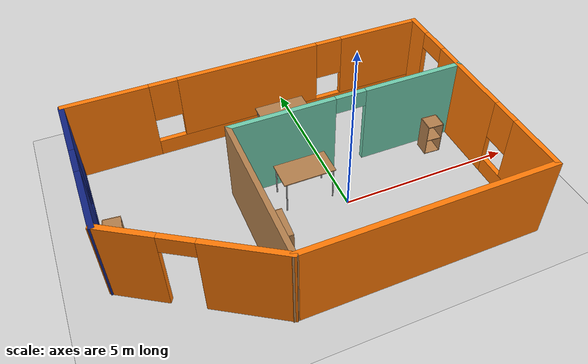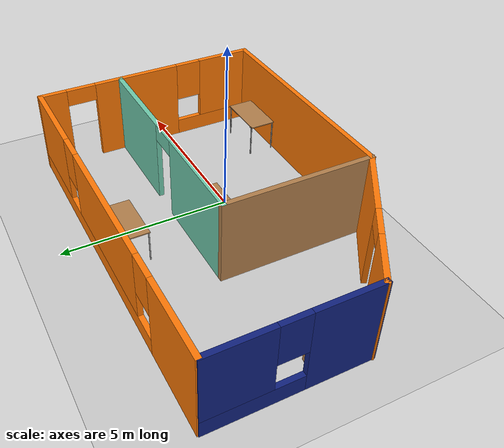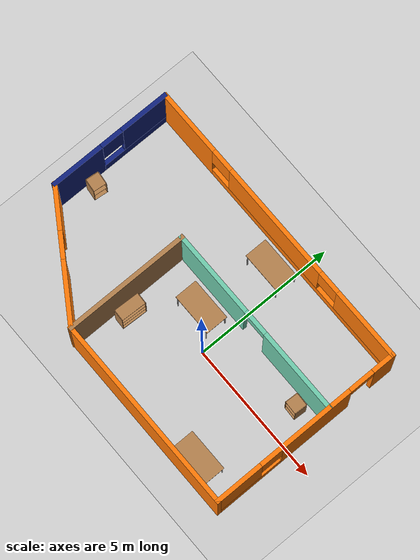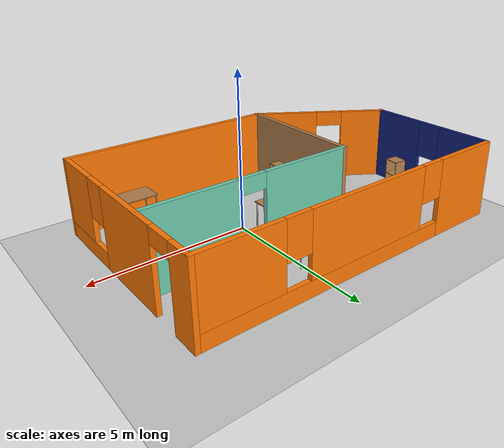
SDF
<sdf version="1.6">
 <world name="default">
  <model name="ground_plane">
   <static>1</static>
   <link name="link">
    <collision name="collision">
     <geometry><plane><normal>0 0 1</normal><size>100 100</size></plane></geometry>
     <surface><friction><ode><mu>100</mu><mu2>50</mu2></ode></friction></surface>
    </collision>
    <visual name="visual">
     <cast_shadows>0</cast_shadows>
     <geometry><plane><normal>0 0 1</normal><size>100 100</size></plane></geometry>
     <material>
      <script><uri>file://media/materials/scripts/gazebo.material</uri><name>Gazebo/Grey</name></script>
     </material>
    </visual>
   </link>
  </model>
  <light name="sun" type="directional">
   <pose>0 0 10 0 -0 0</pose>
   <diffuse>0.8 0.8 0.8 1</diffuse>
   <specular>0.2 0.2 0.2 1</specular>
   <attenuation>
    <range>1000</range>
    <constant>0.9</constant>
    <linear>0.01</linear>
    <quadratic>0.001</quadratic>
   </attenuation>
   <direction>-0.5 0.1 -0.9</direction>
  </light>
  <gravity>0 0 -9.8</gravity>
  <magnetic_field>6e-06 2.3e-05 -4.2e-05</magnetic_field>
  <atmosphere type="adiabatic"/>
  <physics name="default_physics" default="0" type="ode">
   <max_step_size>0.001</max_step_size>
   <real_time_factor>1</real_time_factor>
   <real_time_update_rate>1000</real_time_update_rate>
  </physics>
  <scene><ambient>0.4 0.4 0.4 1</ambient><background>0.7 0.7 0.7 1</background><shadows>1</shadows></scene>
  <spherical_coordinates>
   <surface_model>EARTH_WGS84</surface_model>
   <latitude_deg>0</latitude_deg>
   <longitude_deg>0</longitude_deg>
   <elevation>0</elevation>
   <heading_deg>0</heading_deg>
  </spherical_coordinates>
  <model name="uchesmallHome.world">
   <pose>-1.22553 0.57747 0 0 -0 0</pose>
   <link name="Wall_11">
    <pose>-3.41059 -2.17651 0 0 -0 2.56254</pose>
    <visual name="Wall_11_Visual_0">
     <pose>-1.22639 0 1.25 0 -0 0</pose>
     <geometry><box><size>2.2075 0.15 2.5</size></box></geometry>
     <material>
      <script><uri>file://media/materials/scripts/gazebo.material</uri><name>Gazebo/Grey</name></script>
      <ambient>0.996078 0.47451 0.0196078 1</ambient>
     </material>
     <meta><layer>0</layer></meta>
    </visual>
    <collision name="Wall_11_Collision_0">
     <geometry><box><size>2.2075 0.15 2.5</size></box></geometry>
     <pose>-1.22639 0 1.25 0 -0 0</pose>
    </collision>
    <visual name="Wall_11_Visual_1">
     <pose>1.55375 0 1.25 0 -0 0</pose>
     <geometry><box><size>1.55277 0.15 2.5</size></box></geometry>
     <material>
      <script><uri>file://media/materials/scripts/gazebo.material</uri><name>Gazebo/Grey</name></script>
      <ambient>0.996078 0.47451 0.0196078 1</ambient>
     </material>
     <meta><layer>0</layer></meta>
    </visual>
    <collision name="Wall_11_Collision_1">
     <geometry><box><size>1.55277 0.15 2.5</size></box></geometry>
     <pose>1.55375 0 1.25 0 -0 0</pose>
    </collision>
    <visual name="Wall_11_Visual_2">
     <pose>0.327363 0 2.25 0 -0 0</pose>
     <geometry><box><size>0.9 0.15 0.5</size></box></geometry>
     <material>
      <script><uri>file://media/materials/scripts/gazebo.material</uri><name>Gazebo/Grey</name></script>
      <ambient>0.996078 0.47451 0.0196078 1</ambient>
     </material>
     <meta><layer>0</layer></meta>
    </visual>
    <collision name="Wall_11_Collision_2">
     <geometry><box><size>0.9 0.15 0.5</size></box></geometry>
     <pose>0.327363 0 2.25 0 -0 0</pose>
    </collision>
   </link>
   <link name="Wall_18">
    <collision name="Wall_18_Collision">
     <geometry><box><size>4.5 0.15 2.5</size></box></geometry>
     <pose>0 0 1.25 0 -0 0</pose>
    </collision>
    <visual name="Wall_18_Visual">
     <pose>0 0 1.25 0 -0 0</pose>
     <geometry><box><size>4.5 0.15 2.5</size></box></geometry>
     <material>
      <script><uri>file://media/materials/scripts/gazebo.material</uri><name>Gazebo/Wood</name></script>
      <ambient>1 1 1 1</ambient>
     </material>
     <meta><layer>0</layer></meta>
    </visual>
    <pose>-1.52309 -1.23559 0 0 -0 1.5708</pose>
   </link>
   <link name="Wall_19">
    <pose>1.90191 0.939408 0 0 -0 0</pose>
    <visual name="Wall_19_Visual_0">
     <pose>-1.96202 0 1.25 0 -0 0</pose>
     <geometry><box><size>3.07597 0.15 2.5</size></box></geometry>
     <material>
      <script><uri>file://media/materials/scripts/gazebo.material</uri><name>Gazebo/Grey</name></script>
      <ambient>0.435294 0.796078 0.67451 1</ambient>
     </material>
     <meta><layer>0</layer></meta>
    </visual>
    <collision name="Wall_19_Collision_0">
     <geometry><box><size>3.07597 0.15 2.5</size></box></geometry>
     <pose>-1.96202 0 1.25 0 -0 0</pose>
    </collision>
    <visual name="Wall_19_Visual_1">
     <pose>1.98798 0 1.25 0 -0 0</pose>
     <geometry><box><size>3.02404 0.15 2.5</size></box></geometry>
     <material>
      <script><uri>file://media/materials/scripts/gazebo.material</uri><name>Gazebo/Grey</name></script>
      <ambient>0.435294 0.796078 0.67451 1</ambient>
     </material>
     <meta><layer>0</layer></meta>
    </visual>
    <collision name="Wall_19_Collision_1">
     <geometry><box><size>3.02404 0.15 2.5</size></box></geometry>
     <pose>1.98798 0 1.25 0 -0 0</pose>
    </collision>
    <visual name="Wall_19_Visual_2">
     <pose>0.025965 0 2.25 0 -0 0</pose>
     <geometry><box><size>0.9 0.15 0.5</size></box></geometry>
     <material>
      <script><uri>file://media/materials/scripts/gazebo.material</uri><name>Gazebo/Grey</name></script>
      <ambient>0.435294 0.796078 0.67451 1</ambient>
     </material>
     <meta><layer>0</layer></meta>
    </visual>
    <collision name="Wall_19_Collision_2">
     <geometry><box><size>0.9 0.15 0.5</size></box></geometry>
     <pose>0.025965 0 2.25 0 -0 0</pose>
    </collision>
   </link>
   <link name="Wall_3">
    <pose>0.026908 3.43941 0 0 -0 0</pose>
    <visual name="Wall_3_Visual_0">
     <pose>-4.18846 0 1.25 0 -0 0</pose>
     <geometry><box><size>2.37308 0.15 2.5</size></box></geometry>
     <material>
      <script><uri>file://media/materials/scripts/gazebo.material</uri><name>Gazebo/Grey</name></script>
      <ambient>0.996078 0.47451 0.0196078 1</ambient>
     </material>
     <meta><layer>0</layer></meta>
    </visual>
    <collision name="Wall_3_Collision_0">
     <geometry><box><size>2.37308 0.15 2.5</size></box></geometry>
     <pose>-4.18846 0 1.25 0 -0 0</pose>
    </collision>
    <visual name="Wall_3_Visual_1">
     <pose>1.18654 0 0.25 0 -0 0</pose>
     <geometry><box><size>8.37692 0.15 0.5</size></box></geometry>
     <material>
      <script><uri>file://media/materials/scripts/gazebo.material</uri><name>Gazebo/Grey</name></script>
      <ambient>0.996078 0.47451 0.0196078 1</ambient>
     </material>
     <meta><layer>0</layer></meta>
    </visual>
    <collision name="Wall_3_Collision_1">
     <geometry><box><size>8.37692 0.15 0.5</size></box></geometry>
     <pose>1.18654 0 0.25 0 -0 0</pose>
    </collision>
    <visual name="Wall_3_Visual_2">
     <pose>-0.104224 0 1.5 0 -0 0</pose>
     <geometry><box><size>4.19538 0.15 2</size></box></geometry>
     <material>
      <script><uri>file://media/materials/scripts/gazebo.material</uri><name>Gazebo/Grey</name></script>
      <ambient>0.996078 0.47451 0.0196078 1</ambient>
     </material>
     <meta><layer>0</layer></meta>
    </visual>
    <collision name="Wall_3_Collision_2">
     <geometry><box><size>4.19538 0.15 2</size></box></geometry>
     <pose>-0.104224 0 1.5 0 -0 0</pose>
    </collision>
    <visual name="Wall_3_Visual_3">
     <pose>4.08423 0 1.5 0 -0 0</pose>
     <geometry><box><size>2.58153 0.15 2</size></box></geometry>
     <material>
      <script><uri>file://media/materials/scripts/gazebo.material</uri><name>Gazebo/Grey</name></script>
      <ambient>0.996078 0.47451 0.0196078 1</ambient>
     </material>
     <meta><layer>0</layer></meta>
    </visual>
    <collision name="Wall_3_Collision_3">
     <geometry><box><size>2.58153 0.15 2</size></box></geometry>
     <pose>4.08423 0 1.5 0 -0 0</pose>
    </collision>
    <visual name="Wall_3_Visual_4">
     <pose>-2.60192 0 1.9 0 -0 0</pose>
     <geometry><box><size>0.8 0.15 1.2</size></box></geometry>
     <material>
      <script><uri>file://media/materials/scripts/gazebo.material</uri><name>Gazebo/Grey</name></script>
      <ambient>0.996078 0.47451 0.0196078 1</ambient>
     </material>
     <meta><layer>0</layer></meta>
    </visual>
    <collision name="Wall_3_Collision_4">
     <geometry><box><size>0.8 0.15 1.2</size></box></geometry>
     <pose>-2.60192 0 1.9 0 -0 0</pose>
    </collision>
    <visual name="Wall_3_Visual_5">
     <pose>2.39347 0 1.9 0 -0 0</pose>
     <geometry><box><size>0.8 0.15 1.2</size></box></geometry>
     <material>
      <script><uri>file://media/materials/scripts/gazebo.material</uri><name>Gazebo/Grey</name></script>
      <ambient>0.996078 0.47451 0.0196078 1</ambient>
     </material>
     <meta><layer>0</layer></meta>
    </visual>
    <collision name="Wall_3_Collision_5">
     <geometry><box><size>0.8 0.15 1.2</size></box></geometry>
     <pose>2.39347 0 1.9 0 -0 0</pose>
    </collision>
   </link>
   <link name="Wall_4">
    <pose>5.32691 0.014408 0 0 0 -1.5708</pose>
    <visual name="Wall_4_Visual_0">
     <pose>-3.07066 0 1.25 0 -0 0</pose>
     <geometry><box><size>0.858688 0.15 2.5</size></box></geometry>
     <material>
      <script><uri>file://media/materials/scripts/gazebo.material</uri><name>Gazebo/Grey</name></script>
      <ambient>0.996078 0.47451 0.0196078 1</ambient>
     </material>
     <meta><layer>0</layer></meta>
    </visual>
    <collision name="Wall_4_Collision_0">
     <geometry><box><size>0.858688 0.15 2.5</size></box></geometry>
     <pose>-3.07066 0 1.25 0 -0 0</pose>
    </collision>
    <visual name="Wall_4_Visual_1">
     <pose>-0.394162 0 1.25 0 -0 0</pose>
     <geometry><box><size>2.6943 0.15 2.5</size></box></geometry>
     <material>
      <script><uri>file://media/materials/scripts/gazebo.material</uri><name>Gazebo/Grey</name></script>
      <ambient>0.996078 0.47451 0.0196078 1</ambient>
     </material>
     <meta><layer>0</layer></meta>
    </visual>
    <collision name="Wall_4_Collision_1">
     <geometry><box><size>2.6943 0.15 2.5</size></box></geometry>
     <pose>-0.394162 0 1.25 0 -0 0</pose>
    </collision>
    <visual name="Wall_4_Visual_2">
     <pose>2.22649 0 0.25 0 -0 0</pose>
     <geometry><box><size>2.54701 0.15 0.5</size></box></geometry>
     <material>
      <script><uri>file://media/materials/scripts/gazebo.material</uri><name>Gazebo/Grey</name></script>
      <ambient>0.996078 0.47451 0.0196078 1</ambient>
     </material>
     <meta><layer>0</layer></meta>
    </visual>
    <collision name="Wall_4_Collision_2">
     <geometry><box><size>2.54701 0.15 0.5</size></box></geometry>
     <pose>2.22649 0 0.25 0 -0 0</pose>
    </collision>
    <visual name="Wall_4_Visual_3">
     <pose>2.62649 0 1.5 0 -0 0</pose>
     <geometry><box><size>1.74701 0.15 2</size></box></geometry>
     <material>
      <script><uri>file://media/materials/scripts/gazebo.material</uri><name>Gazebo/Grey</name></script>
      <ambient>0.996078 0.47451 0.0196078 1</ambient>
     </material>
     <meta><layer>0</layer></meta>
    </visual>
    <collision name="Wall_4_Collision_3">
     <geometry><box><size>1.74701 0.15 2</size></box></geometry>
     <pose>2.62649 0 1.5 0 -0 0</pose>
    </collision>
    <visual name="Wall_4_Visual_4">
     <pose>1.35299 0 1.9 0 -0 0</pose>
     <geometry><box><size>0.8 0.15 1.2</size></box></geometry>
     <material>
      <script><uri>file://media/materials/scripts/gazebo.material</uri><name>Gazebo/Grey</name></script>
      <ambient>0.996078 0.47451 0.0196078 1</ambient>
     </material>
     <meta><layer>0</layer></meta>
    </visual>
    <collision name="Wall_4_Collision_4">
     <geometry><box><size>0.8 0.15 1.2</size></box></geometry>
     <pose>1.35299 0 1.9 0 -0 0</pose>
    </collision>
    <visual name="Wall_4_Visual_5">
     <pose>-2.19131 0 2.25 0 -0 0</pose>
     <geometry><box><size>0.9 0.15 0.5</size></box></geometry>
     <material>
      <script><uri>file://media/materials/scripts/gazebo.material</uri><name>Gazebo/Grey</name></script>
      <ambient>0.996078 0.47451 0.0196078 1</ambient>
     </material>
     <meta><layer>0</layer></meta>
    </visual>
    <collision name="Wall_4_Collision_5">
     <geometry><box><size>0.9 0.15 0.5</size></box></geometry>
     <pose>-2.19131 0 2.25 0 -0 0</pose>
    </collision>
   </link>
   <link name="Wall_5">
    <collision name="Wall_5_Collision">
     <geometry><box><size>7 0.15 2.5</size></box></geometry>
     <pose>0 0 1.25 0 -0 0</pose>
    </collision>
    <visual name="Wall_5_Visual">
     <pose>0 0 1.25 0 -0 0</pose>
     <geometry><box><size>7 0.15 2.5</size></box></geometry>
     <material>
      <script><uri>file://media/materials/scripts/gazebo.material</uri><name>Gazebo/Grey</name></script>
      <ambient>0.996078 0.47451 0.0196078 1</ambient>
     </material>
     <meta><layer>0</layer></meta>
    </visual>
    <pose>1.90191 -3.41059 0 0 -0 3.14159</pose>
   </link>
   <link name="Wall_8">
    <pose>-5.29809 1.23258 0 0 -0 1.5708</pose>
    <visual name="Wall_8_Visual_0">
     <pose>-1.29684 0 1.25 0 -0 0</pose>
     <geometry><box><size>1.90632 0.15 2.5</size></box></geometry>
     <material>
      <script><uri>file://media/materials/scripts/gazebo.material</uri><name>Gazebo/Grey</name></script>
      <ambient>0.0666667 0.133333 0.498039 1</ambient>
     </material>
     <meta><layer>0</layer></meta>
    </visual>
    <collision name="Wall_8_Collision_0">
     <geometry><box><size>1.90632 0.15 2.5</size></box></geometry>
     <pose>-1.29684 0 1.25 0 -0 0</pose>
    </collision>
    <visual name="Wall_8_Visual_1">
     <pose>0.953162 0 0.25 0 -0 0</pose>
     <geometry><box><size>2.59368 0.15 0.5</size></box></geometry>
     <material>
      <script><uri>file://media/materials/scripts/gazebo.material</uri><name>Gazebo/Grey</name></script>
      <ambient>0.0666667 0.133333 0.498039 1</ambient>
     </material>
     <meta><layer>0</layer></meta>
    </visual>
    <collision name="Wall_8_Collision_1">
     <geometry><box><size>2.59368 0.15 0.5</size></box></geometry>
     <pose>0.953162 0 0.25 0 -0 0</pose>
    </collision>
    <visual name="Wall_8_Visual_2">
     <pose>1.35316 0 1.5 0 -0 0</pose>
     <geometry><box><size>1.79368 0.15 2</size></box></geometry>
     <material>
      <script><uri>file://media/materials/scripts/gazebo.material</uri><name>Gazebo/Grey</name></script>
      <ambient>0.0666667 0.133333 0.498039 1</ambient>
     </material>
     <meta><layer>0</layer></meta>
    </visual>
    <collision name="Wall_8_Collision_2">
     <geometry><box><size>1.79368 0.15 2</size></box></geometry>
     <pose>1.35316 0 1.5 0 -0 0</pose>
    </collision>
    <visual name="Wall_8_Visual_3">
     <pose>0.056323 0 1.9 0 -0 0</pose>
     <geometry><box><size>0.8 0.15 1.2</size></box></geometry>
     <material>
      <script><uri>file://media/materials/scripts/gazebo.material</uri><name>Gazebo/Grey</name></script>
      <ambient>0.0666667 0.133333 0.498039 1</ambient>
     </material>
     <meta><layer>0</layer></meta>
    </visual>
    <collision name="Wall_8_Collision_3">
     <geometry><box><size>0.8 0.15 1.2</size></box></geometry>
     <pose>0.056323 0 1.9 0 -0 0</pose>
    </collision>
   </link>
   <static>1</static>
  </model>
  <model name="cabinet">
   <static>1</static>
   <link name="cabinet_bottom_plate">
    <inertial>
     <pose>0 0 -1 0 -0 0</pose>
     <inertia><ixx>2.05</ixx><ixy>0</ixy><ixz>0</ixz><iyy>2.05</iyy><iyz>0</iyz><izz>2.05</izz></inertia>
     <mass>25</mass>
    </inertial>
    <collision name="cabinet_bottom_plate_geom">
     <pose>0 0 0.01 0 -0 0</pose>
     <geometry><box><size>0.45 0.45 0.02</size></box></geometry>
    </collision>
    <visual name="cabinet_bottom_plate_geom_visual">
     <pose>0 0 0.01 0 -0 0</pose>
     <geometry><box><size>0.45 0.45 0.02</size></box></geometry>
     <material>
      <script><uri>file://media/materials/scripts/gazebo.material</uri><name>Gazebo/Wood</name></script>
     </material>
    </visual>
    <collision name="cabinet_bottom_plate_geom_cabinet_back_plate">
     <pose>0.235 0 0.51 0 -0 0</pose>
     <geometry><box><size>0.02 0.45 1.02</size></box></geometry>
    </collision>
    <visual name="cabinet_bottom_plate_geom_cabinet_back_plate_visual">
     <pose>0.235 0 0.51 0 -0 0</pose>
     <geometry><box><size>0.02 0.45 1.02</size></box></geometry>
     <material>
      <script><uri>file://media/materials/scripts/gazebo.material</uri><name>Gazebo/Wood</name></script>
     </material>
    </visual>
    <collision name="cabinet_bottom_plate_geom_cabinet_left_plate">
     <pose>0 0.235 0.51 0 -0 0</pose>
     <geometry><box><size>0.45 0.02 1.02</size></box></geometry>
    </collision>
    <visual name="cabinet_bottom_plate_geom_cabinet_left_plate_visual">
     <pose>0 0.235 0.51 0 -0 0</pose>
     <geometry><box><size>0.45 0.02 1.02</size></box></geometry>
     <material>
      <script><uri>file://media/materials/scripts/gazebo.material</uri><name>Gazebo/Wood</name></script>
     </material>
    </visual>
    <collision name="cabinet_bottom_plate_geom_cabinet_middle_plate">
     <pose>0 0 0.51 0 -0 0</pose>
     <geometry><box><size>0.45 0.45 0.02</size></box></geometry>
    </collision>
    <visual name="cabinet_bottom_plate_geom_cabinet_middle_plate_visual">
     <pose>0 0 0.51 0 -0 0</pose>
     <geometry><box><size>0.45 0.45 0.02</size></box></geometry>
     <material>
      <script><uri>file://media/materials/scripts/gazebo.material</uri><name>Gazebo/Wood</name></script>
     </material>
    </visual>
    <collision name="cabinet_bottom_plate_geom_cabinet_right_plate">
     <pose>0 -0.235 0.51 0 -0 0</pose>
     <geometry><box><size>0.45 0.02 1.02</size></box></geometry>
    </collision>
    <visual name="cabinet_bottom_plate_geom_cabinet_right_plate_visual">
     <pose>0 -0.235 0.51 0 -0 0</pose>
     <geometry><box><size>0.45 0.02 1.02</size></box></geometry>
     <material>
      <script><uri>file://media/materials/scripts/gazebo.material</uri><name>Gazebo/Wood</name></script>
     </material>
    </visual>
    <collision name="cabinet_bottom_plate_geom_cabinet_top_plate">
     <pose>0 0 1.01 0 -0 0</pose>
     <geometry><box><size>0.45 0.45 0.02</size></box></geometry>
    </collision>
    <visual name="cabinet_bottom_plate_geom_cabinet_top_plate_visual">
     <pose>0 0 1.01 0 -0 0</pose>
     <geometry><box><size>0.45 0.45 0.02</size></box></geometry>
     <material>
      <script><uri>file://media/materials/scripts/gazebo.material</uri><name>Gazebo/Wood</name></script>
     </material>
    </visual>
   </link>
   <pose>3.19873 1.04864 0 0 -0 1.52227</pose>
  </model>
  <model name="table">
   <static>1</static>
   <link name="link">
    <collision name="surface">
     <pose>0 0 1 0 -0 0</pose>
     <geometry><box><size>1.5 0.8 0.03</size></box></geometry>
     <surface><friction><ode><mu>0.6</mu><mu2>0.6</mu2></ode></friction></surface>
    </collision>
    <visual name="visual1">
     <pose>0 0 1 0 -0 0</pose>
     <geometry><box><size>1.5 0.8 0.03</size></box></geometry>
     <material>
      <script><uri>file://media/materials/scripts/gazebo.material</uri><name>Gazebo/Wood</name></script>
     </material>
    </visual>
    <collision name="front_left_leg">
     <pose>0.68 0.38 0.5 0 -0 0</pose>
     <geometry><cylinder><radius>0.02</radius><length>1</length></cylinder></geometry>
    </collision>
    <visual name="front_left_leg">
     <pose>0.68 0.38 0.5 0 -0 0</pose>
     <geometry><cylinder><radius>0.02</radius><length>1</length></cylinder></geometry>
     <material>
      <script><uri>file://media/materials/scripts/gazebo.material</uri><name>Gazebo/Grey</name></script>
     </material>
    </visual>
    <collision name="front_right_leg">
     <pose>0.68 -0.38 0.5 0 -0 0</pose>
     <geometry><cylinder><radius>0.02</radius><length>1</length></cylinder></geometry>
    </collision>
    <visual name="front_right_leg">
     <pose>0.68 -0.38 0.5 0 -0 0</pose>
     <geometry><cylinder><radius>0.02</radius><length>1</length></cylinder></geometry>
     <material>
      <script><uri>file://media/materials/scripts/gazebo.material</uri><name>Gazebo/Grey</name></script>
     </material>
    </visual>
    <collision name="back_right_leg">
     <pose>-0.68 -0.38 0.5 0 -0 0</pose>
     <geometry><cylinder><radius>0.02</radius><length>1</length></cylinder></geometry>
    </collision>
    <visual name="back_right_leg">
     <pose>-0.68 -0.38 0.5 0 -0 0</pose>
     <geometry><cylinder><radius>0.02</radius><length>1</length></cylinder></geometry>
     <material>
      <script><uri>file://media/materials/scripts/gazebo.material</uri><name>Gazebo/Grey</name></script>
     </material>
    </visual>
    <collision name="back_left_leg">
     <pose>-0.68 0.38 0.5 0 -0 0</pose>
     <geometry><cylinder><radius>0.02</radius><length>1</length></cylinder></geometry>
    </collision>
    <visual name="back_left_leg">
     <pose>-0.68 0.38 0.5 0 -0 0</pose>
     <geometry><cylinder><radius>0.02</radius><length>1</length></cylinder></geometry>
     <material>
      <script><uri>file://media/materials/scripts/gazebo.material</uri><name>Gazebo/Grey</name></script>
     </material>
    </visual>
   </link>
   <pose>-0.961198 0.778703 0 0 -0 0</pose>
  </model>
  <model name="table_0">
   <static>1</static>
   <link name="link">
    <collision name="surface">
     <pose>0 0 1 0 -0 0</pose>
     <geometry><box><size>1.5 0.8 0.03</size></box></geometry>
     <surface><friction><ode><mu>0.6</mu><mu2>0.6</mu2></ode></friction></surface>
    </collision>
    <visual name="visual1">
     <pose>0 0 1 0 -0 0</pose>
     <geometry><box><size>1.5 0.8 0.03</size></box></geometry>
     <material>
      <script><uri>file://media/materials/scripts/gazebo.material</uri><name>Gazebo/Wood</name></script>
     </material>
    </visual>
    <collision name="front_left_leg">
     <pose>0.68 0.38 0.5 0 -0 0</pose>
     <geometry><cylinder><radius>0.02</radius><length>1</length></cylinder></geometry>
    </collision>
    <visual name="front_left_leg">
     <pose>0.68 0.38 0.5 0 -0 0</pose>
     <geometry><cylinder><radius>0.02</radius><length>1</length></cylinder></geometry>
     <material>
      <script><uri>file://media/materials/scripts/gazebo.material</uri><name>Gazebo/Grey</name></script>
     </material>
    </visual>
    <collision name="front_right_leg">
     <pose>0.68 -0.38 0.5 0 -0 0</pose>
     <geometry><cylinder><radius>0.02</radius><length>1</length></cylinder></geometry>
    </collision>
    <visual name="front_right_leg">
     <pose>0.68 -0.38 0.5 0 -0 0</pose>
     <geometry><cylinder><radius>0.02</radius><length>1</length></cylinder></geometry>
     <material>
      <script><uri>file://media/materials/scripts/gazebo.material</uri><name>Gazebo/Grey</name></script>
     </material>
    </visual>
    <collision name="back_right_leg">
     <pose>-0.68 -0.38 0.5 0 -0 0</pose>
     <geometry><cylinder><radius>0.02</radius><length>1</length></cylinder></geometry>
    </collision>
    <visual name="back_right_leg">
     <pose>-0.68 -0.38 0.5 0 -0 0</pose>
     <geometry><cylinder><radius>0.02</radius><length>1</length></cylinder></geometry>
     <material>
      <script><uri>file://media/materials/scripts/gazebo.material</uri><name>Gazebo/Grey</name></script>
     </material>
    </visual>
    <collision name="back_left_leg">
     <pose>-0.68 0.38 0.5 0 -0 0</pose>
     <geometry><cylinder><radius>0.02</radius><length>1</length></cylinder></geometry>
    </collision>
    <visual name="back_left_leg">
     <pose>-0.68 0.38 0.5 0 -0 0</pose>
     <geometry><cylinder><radius>0.02</radius><length>1</length></cylinder></geometry>
     <material>
      <script><uri>file://media/materials/scripts/gazebo.material</uri><name>Gazebo/Grey</name></script>
     </material>
    </visual>
   </link>
   <pose>-0.572535 3.26962 0 0 -0 0</pose>
  </model>
  <model name="table_1">
   <static>1</static>
   <link name="link">
    <collision name="surface">
     <pose>0 0 1 0 -0 0</pose>
     <geometry><box><size>1.5 0.8 0.03</size></box></geometry>
     <surface><friction><ode><mu>0.6</mu><mu2>0.6</mu2></ode></friction></surface>
    </collision>
    <visual name="visual1">
     <pose>0 0 1 0 -0 0</pose>
     <geometry><box><size>1.5 0.8 0.03</size></box></geometry>
     <material>
      <script><uri>file://media/materials/scripts/gazebo.material</uri><name>Gazebo/Wood</name></script>
     </material>
    </visual>
    <collision name="front_left_leg">
     <pose>0.68 0.38 0.5 0 -0 0</pose>
     <geometry><cylinder><radius>0.02</radius><length>1</length></cylinder></geometry>
    </collision>
    <visual name="front_left_leg">
     <pose>0.68 0.38 0.5 0 -0 0</pose>
     <geometry><cylinder><radius>0.02</radius><length>1</length></cylinder></geometry>
     <material>
      <script><uri>file://media/materials/scripts/gazebo.material</uri><name>Gazebo/Grey</name></script>
     </material>
    </visual>
    <collision name="front_right_leg">
     <pose>0.68 -0.38 0.5 0 -0 0</pose>
     <geometry><cylinder><radius>0.02</radius><length>1</length></cylinder></geometry>
    </collision>
    <visual name="front_right_leg">
     <pose>0.68 -0.38 0.5 0 -0 0</pose>
     <geometry><cylinder><radius>0.02</radius><length>1</length></cylinder></geometry>
     <material>
      <script><uri>file://media/materials/scripts/gazebo.material</uri><name>Gazebo/Grey</name></script>
     </material>
    </visual>
    <collision name="back_right_leg">
     <pose>-0.68 -0.38 0.5 0 -0 0</pose>
     <geometry><cylinder><radius>0.02</radius><length>1</length></cylinder></geometry>
    </collision>
    <visual name="back_right_leg">
     <pose>-0.68 -0.38 0.5 0 -0 0</pose>
     <geometry><cylinder><radius>0.02</radius><length>1</length></cylinder></geometry>
     <material>
      <script><uri>file://media/materials/scripts/gazebo.material</uri><name>Gazebo/Grey</name></script>
     </material>
    </visual>
    <collision name="back_left_leg">
     <pose>-0.68 0.38 0.5 0 -0 0</pose>
     <geometry><cylinder><radius>0.02</radius><length>1</length></cylinder></geometry>
    </collision>
    <visual name="back_left_leg">
     <pose>-0.68 0.38 0.5 0 -0 0</pose>
     <geometry><cylinder><radius>0.02</radius><length>1</length></cylinder></geometry>
     <material>
      <script><uri>file://media/materials/scripts/gazebo.material</uri><name>Gazebo/Grey</name></script>
     </material>
    </visual>
   </link>
   <pose>2.5596 -2.30792 0 0 -0 0</pose>
  </model>
  <model name="cabinet_0">
   <static>1</static>
   <link name="cabinet_bottom_plate">
    <inertial>
     <pose>0 0 -1 0 -0 0</pose>
     <inertia><ixx>2.05</ixx><ixy>0</ixy><ixz>0</ixz><iyy>2.05</iyy><iyz>0</iyz><izz>2.05</izz></inertia>
     <mass>25</mass>
    </inertial>
    <collision name="cabinet_bottom_plate_geom">
     <pose>0 0 0.01 0 -0 0</pose>
     <geometry><box><size>0.45 0.45 0.02</size></box></geometry>
    </collision>
    <visual name="cabinet_bottom_plate_geom_visual">
     <pose>0 0 0.01 0 -0 0</pose>
     <geometry><box><size>0.45 0.45 0.02</size></box></geometry>
     <material>
      <script><uri>file://media/materials/scripts/gazebo.material</uri><name>Gazebo/Wood</name></script>
     </material>
    </visual>
    <collision name="cabinet_bottom_plate_geom_cabinet_back_plate">
     <pose>0.235 0 0.51 0 -0 0</pose>
     <geometry><box><size>0.02 0.45 1.02</size></box></geometry>
    </collision>
    <visual name="cabinet_bottom_plate_geom_cabinet_back_plate_visual">
     <pose>0.235 0 0.51 0 -0 0</pose>
     <geometry><box><size>0.02 0.45 1.02</size></box></geometry>
     <material>
      <script><uri>file://media/materials/scripts/gazebo.material</uri><name>Gazebo/Wood</name></script>
     </material>
    </visual>
    <collision name="cabinet_bottom_plate_geom_cabinet_left_plate">
     <pose>0 0.235 0.51 0 -0 0</pose>
     <geometry><box><size>0.45 0.02 1.02</size></box></geometry>
    </collision>
    <visual name="cabinet_bottom_plate_geom_cabinet_left_plate_visual">
     <pose>0 0.235 0.51 0 -0 0</pose>
     <geometry><box><size>0.45 0.02 1.02</size></box></geometry>
     <material>
      <script><uri>file://media/materials/scripts/gazebo.material</uri><name>Gazebo/Wood</name></script>
     </material>
    </visual>
    <collision name="cabinet_bottom_plate_geom_cabinet_middle_plate">
     <pose>0 0 0.51 0 -0 0</pose>
     <geometry><box><size>0.45 0.45 0.02</size></box></geometry>
    </collision>
    <visual name="cabinet_bottom_plate_geom_cabinet_middle_plate_visual">
     <pose>0 0 0.51 0 -0 0</pose>
     <geometry><box><size>0.45 0.45 0.02</size></box></geometry>
     <material>
      <script><uri>file://media/materials/scripts/gazebo.material</uri><name>Gazebo/Wood</name></script>
     </material>
    </visual>
    <collision name="cabinet_bottom_plate_geom_cabinet_right_plate">
     <pose>0 -0.235 0.51 0 -0 0</pose>
     <geometry><box><size>0.45 0.02 1.02</size></box></geometry>
    </collision>
    <visual name="cabinet_bottom_plate_geom_cabinet_right_plate_visual">
     <pose>0 -0.235 0.51 0 -0 0</pose>
     <geometry><box><size>0.45 0.02 1.02</size></box></geometry>
     <material>
      <script><uri>file://media/materials/scripts/gazebo.material</uri><name>Gazebo/Wood</name></script>
     </material>
    </visual>
    <collision name="cabinet_bottom_plate_geom_cabinet_top_plate">
     <pose>0 0 1.01 0 -0 0</pose>
     <geometry><box><size>0.45 0.45 0.02</size></box></geometry>
    </collision>
    <visual name="cabinet_bottom_plate_geom_cabinet_top_plate_visual">
     <pose>0 0 1.01 0 -0 0</pose>
     <geometry><box><size>0.45 0.45 0.02</size></box></geometry>
     <material>
      <script><uri>file://media/materials/scripts/gazebo.material</uri><name>Gazebo/Wood</name></script>
     </material>
    </visual>
   </link>
   <pose>-6.11546 0.84206 0 0 -0 3.03444</pose>
  </model>
  <model name="bookshelf">
   <static>1</static>
   <link name="link">
    <inertial><mass>1</mass></inertial>
    <collision name="back">
     <pose>0 0.005 0.6 0 -0 0</pose>
     <geometry><box><size>0.9 0.01 1.2</size></box></geometry>
    </collision>
    <visual name="visual1">
     <pose>0 0.005 0.6 0 -0 0</pose>
     <geometry><box><size>0.9 0.01 1.2</size></box></geometry>
     <material>
      <script><uri>file://media/materials/scripts/gazebo.material</uri><name>Gazebo/Wood</name></script>
     </material>
    </visual>
    <collision name="left_side">
     <pose>0.45 -0.195 0.6 0 -0 0</pose>
     <geometry><box><size>0.02 0.4 1.2</size></box></geometry>
    </collision>
    <visual name="visual2">
     <pose>0.45 -0.195 0.6 0 -0 0</pose>
     <geometry><box><size>0.02 0.4 1.2</size></box></geometry>
     <material>
      <script><uri>file://media/materials/scripts/gazebo.material</uri><name>Gazebo/Wood</name></script>
     </material>
    </visual>
    <collision name="right_side">
     <pose>-0.45 -0.195 0.6 0 -0 0</pose>
     <geometry><box><size>0.02 0.4 1.2</size></box></geometry>
    </collision>
    <visual name="visual3">
     <pose>-0.45 -0.195 0.6 0 -0 0</pose>
     <geometry><box><size>0.02 0.4 1.2</size></box></geometry>
     <material>
      <script><uri>file://media/materials/scripts/gazebo.material</uri><name>Gazebo/Wood</name></script>
     </material>
    </visual>
    <collision name="bottom">
     <pose>0 -0.195 0.03 0 -0 0</pose>
     <geometry><box><size>0.88 0.4 0.06</size></box></geometry>
    </collision>
    <visual name="visual4">
     <pose>0 -0.195 0.03 0 -0 0</pose>
     <geometry><box><size>0.88 0.4 0.06</size></box></geometry>
     <material>
      <script><uri>file://media/materials/scripts/gazebo.material</uri><name>Gazebo/Wood</name></script>
     </material>
    </visual>
    <collision name="top">
     <pose>0 -0.195 1.19 0 -0 0</pose>
     <geometry><box><size>0.88 0.4 0.02</size></box></geometry>
    </collision>
    <visual name="visual5">
     <pose>0 -0.195 1.19 0 -0 0</pose>
     <geometry><box><size>0.88 0.4 0.02</size></box></geometry>
     <material>
      <script><uri>file://media/materials/scripts/gazebo.material</uri><name>Gazebo/Wood</name></script>
     </material>
    </visual>
    <collision name="low_shelf">
     <pose>0 -0.195 0.43 0 -0 0</pose>
     <geometry><box><size>0.88 0.4 0.02</size></box></geometry>
    </collision>
    <visual name="visual6">
     <pose>0 -0.195 0.43 0 -0 0</pose>
     <geometry><box><size>0.88 0.4 0.02</size></box></geometry>
     <material>
      <script><uri>file://media/materials/scripts/gazebo.material</uri><name>Gazebo/Wood</name></script>
     </material>
    </visual>
    <collision name="high_shelf">
     <pose>0 -0.195 0.8 0 -0 0</pose>
     <geometry><box><size>0.88 0.4 0.02</size></box></geometry>
    </collision>
    <visual name="visual7">
     <pose>0 -0.195 0.8 0 -0 0</pose>
     <geometry><box><size>0.88 0.4 0.02</size></box></geometry>
     <material>
      <script><uri>file://media/materials/scripts/gazebo.material</uri><name>Gazebo/Wood</name></script>
     </material>
    </visual>
   </link>
   <pose>-2.53596 -0.904017 0 0 -0 1.52979</pose>
  </model>
 </world>
</sdf>
